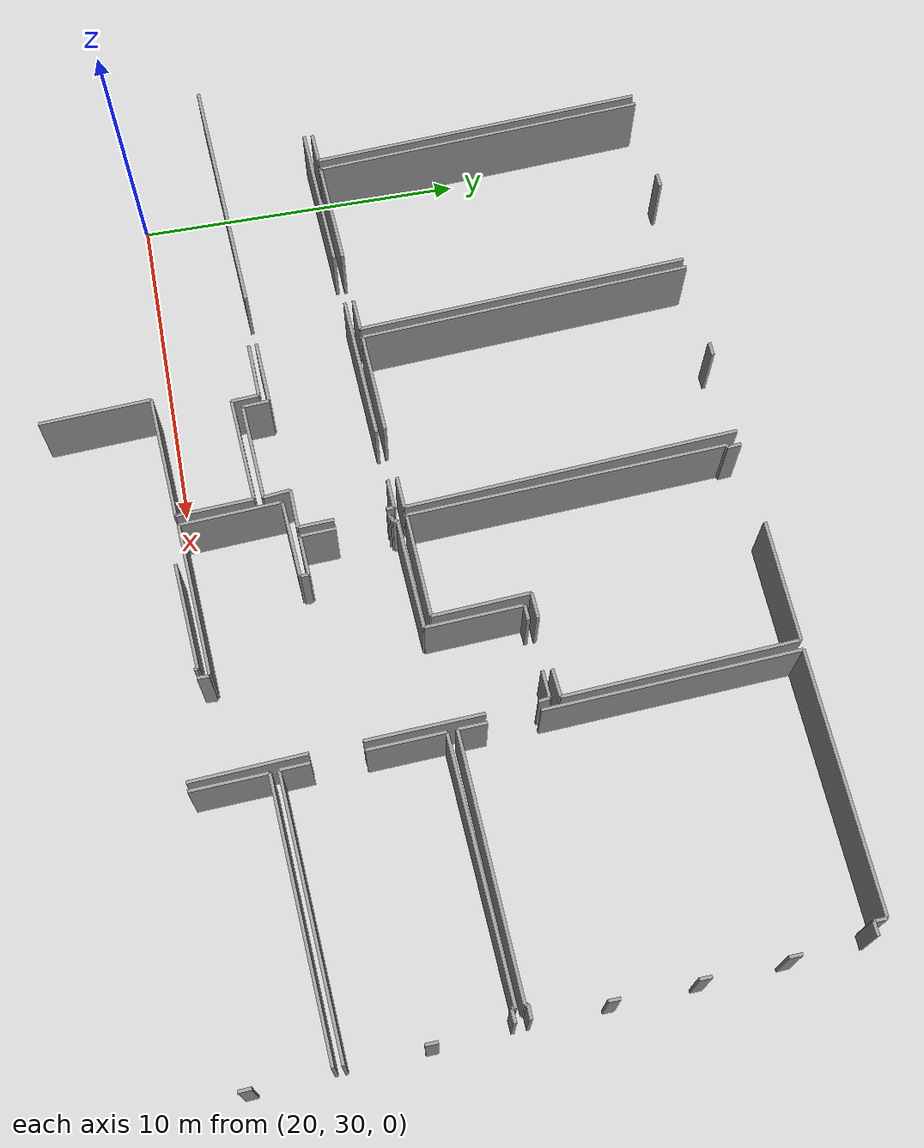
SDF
<sdf version="1.6">
 <world name="default">
  <model name="ground_plane">
   <static>1</static>
   <link name="link">
    <collision name="collision">
     <geometry><plane><normal>0 0 1</normal><size>100 100</size></plane></geometry>
     <surface><friction><ode><mu>100</mu><mu2>50</mu2></ode></friction></surface>
    </collision>
    <visual name="visual">
     <cast_shadows>0</cast_shadows>
     <geometry><plane><normal>0 0 1</normal><size>100 100</size></plane></geometry>
     <material>
      <script><uri>file://media/materials/scripts/gazebo.material</uri><name>Gazebo/Grey</name></script>
     </material>
    </visual>
   </link>
  </model>
  <model name="50025633">
   <static>1</static>
   <link name="Wall_14">
    <collision name="Wall_14_Collision">
     <geometry><box><size>0.938079922065 0.1 2.5</size></box></geometry>
     <pose>0.469039961033 0 1.25 0 0 0</pose>
    </collision>
    <visual name="Wall_14_Visual">
     <pose>0.469039961033 0 1.25 0 0 0</pose>
     <geometry><box><size>0.938079922065 0.1 2.5</size></box></geometry>
     <material>
      <script><uri>file://media/materials/scripts/gazebo.material</uri><name>Gazebo/Grey</name></script>
      <ambient>1 1 1 1</ambient>
     </material>
    </visual>
    <pose>70.1288818594 -11.8567118293 0 0 0 -3.07545689106</pose>
   </link>
   <link name="Wall_21">
    <collision name="Wall_21_Collision">
     <geometry><box><size>10.2370171481 0.1 2.5</size></box></geometry>
     <pose>5.11850857406 0 1.25 0 0 0</pose>
    </collision>
    <visual name="Wall_21_Visual">
     <pose>5.11850857406 0 1.25 0 0 0</pose>
     <geometry><box><size>10.2370171481 0.1 2.5</size></box></geometry>
     <material>
      <script><uri>file://media/materials/scripts/gazebo.material</uri><name>Gazebo/Grey</name></script>
      <ambient>1 1 1 1</ambient>
     </material>
    </visual>
    <pose>69.5203613011 -1.63779687609 0 0 0 -1.51131811286</pose>
   </link>
   <link name="Wall_22">
    <collision name="Wall_22_Collision">
     <geometry><box><size>0.977506399178 0.1 2.5</size></box></geometry>
     <pose>0.488753199589 0 1.25 0 0 0</pose>
    </collision>
    <visual name="Wall_22_Visual">
     <pose>0.488753199589 0 1.25 0 0 0</pose>
     <geometry><box><size>0.977506399178 0.1 2.5</size></box></geometry>
     <material>
      <script><uri>file://media/materials/scripts/gazebo.material</uri><name>Gazebo/Grey</name></script>
      <ambient>1 1 1 1</ambient>
     </material>
    </visual>
    <pose>76.1431992428 -11.4862638235 0 0 0 -3.080211524</pose>
   </link>
   <link name="Wall_23">
    <collision name="Wall_23_Collision">
     <geometry><box><size>3.18343379874 0.1 2.5</size></box></geometry>
     <pose>1.59171689937 0 1.25 0 0 0</pose>
    </collision>
    <visual name="Wall_23_Visual">
     <pose>1.59171689937 0 1.25 0 0 0</pose>
     <geometry><box><size>3.18343379874 0.1 2.5</size></box></geometry>
     <material>
      <script><uri>file://media/materials/scripts/gazebo.material</uri><name>Gazebo/Grey</name></script>
      <ambient>1 1 1 1</ambient>
     </material>
    </visual>
    <pose>73.6069770249 -11.6361707669 0 0 0 -3.07805863666</pose>
   </link>
   <link name="Wall_24">
    <collision name="Wall_24_Collision">
     <geometry><box><size>10.2492937083 0.1 2.5</size></box></geometry>
     <pose>5.12464685417 0 1.25 0 0 0</pose>
    </collision>
    <visual name="Wall_24_Visual">
     <pose>5.12464685417 0 1.25 0 0 0</pose>
     <geometry><box><size>10.2492937083 0.1 2.5</size></box></geometry>
     <material>
      <script><uri>file://media/materials/scripts/gazebo.material</uri><name>Gazebo/Grey</name></script>
      <ambient>1 1 1 1</ambient>
     </material>
    </visual>
    <pose>70.4299661439 -11.8382910608 0 0 0 1.63138285958</pose>
   </link>
   <link name="Wall_25">
    <collision name="Wall_25_Collision">
     <geometry><box><size>0.422264637513 0.1 2.5</size></box></geometry>
     <pose>0.211132318757 0 1.25 0 0 0</pose>
    </collision>
    <visual name="Wall_25_Visual">
     <pose>0.211132318757 0 1.25 0 0 0</pose>
     <geometry><box><size>0.422264637513 0.1 2.5</size></box></geometry>
     <material>
      <script><uri>file://media/materials/scripts/gazebo.material</uri><name>Gazebo/Grey</name></script>
      <ambient>1 1 1 1</ambient>
     </material>
    </visual>
    <pose>72.4387191849 -1.45526611658 0 0 0 0.0688595942033</pose>
   </link>
   <link name="Wall_26">
    <collision name="Wall_26_Collision">
     <geometry><box><size>10.2412191776 0.1 2.5</size></box></geometry>
     <pose>5.12060958881 0 1.25 0 0 0</pose>
    </collision>
    <visual name="Wall_26_Visual">
     <pose>5.12060958881 0 1.25 0 0 0</pose>
     <geometry><box><size>10.2412191776 0.1 2.5</size></box></geometry>
     <material>
      <script><uri>file://media/materials/scripts/gazebo.material</uri><name>Gazebo/Grey</name></script>
      <ambient>1 1 1 1</ambient>
     </material>
    </visual>
    <pose>75.501775381 -1.26515108206 0 0 0 -1.50812371461</pose>
   </link>
   <link name="Wall_27">
    <collision name="Wall_27_Collision">
     <geometry><box><size>0.972380827445 0.1 2.5</size></box></geometry>
     <pose>0.486190413722 0 1.25 0 0 0</pose>
    </collision>
    <visual name="Wall_27_Visual">
     <pose>0.486190413722 0 1.25 0 0 0</pose>
     <geometry><box><size>0.972380827445 0.1 2.5</size></box></geometry>
     <material>
      <script><uri>file://media/materials/scripts/gazebo.material</uri><name>Gazebo/Grey</name></script>
      <ambient>1 1 1 1</ambient>
     </material>
    </visual>
    <pose>82.1318545903 -11.1329661884 0 0 0 -3.08525348964</pose>
   </link>
   <link name="Wall_28">
    <collision name="Wall_28_Collision">
     <geometry><box><size>3.14222034256 0.1 2.5</size></box></geometry>
     <pose>1.57111017128 0 1.25 0 0 0</pose>
    </collision>
    <visual name="Wall_28_Visual">
     <pose>1.57111017128 0 1.25 0 0 0</pose>
     <geometry><box><size>3.14222034256 0.1 2.5</size></box></geometry>
     <material>
      <script><uri>file://media/materials/scripts/gazebo.material</uri><name>Gazebo/Grey</name></script>
      <ambient>1 1 1 1</ambient>
     </material>
    </visual>
    <pose>79.5598071536 -11.2828731317 0 0 0 -3.08532491945</pose>
   </link>
   <link name="Wall_29">
    <collision name="Wall_29_Collision">
     <geometry><box><size>10.2571789274 0.1 2.5</size></box></geometry>
     <pose>5.1285894637 0 1.25 0 0 0</pose>
    </collision>
    <visual name="Wall_29_Visual">
     <pose>5.1285894637 0 1.25 0 0 0</pose>
     <geometry><box><size>10.2571789274 0.1 2.5</size></box></geometry>
     <material>
      <script><uri>file://media/materials/scripts/gazebo.material</uri><name>Gazebo/Grey</name></script>
      <ambient>1 1 1 1</ambient>
     </material>
    </visual>
    <pose>76.4225597246 -11.4595854692 0 0 0 1.63334647593</pose>
   </link>
   <link name="Wall_30">
    <collision name="Wall_30_Collision">
     <geometry><box><size>0.410088114194 0.1 2.5</size></box></geometry>
     <pose>0.205044057097 0 1.25 0 0 0</pose>
    </collision>
    <visual name="Wall_30_Visual">
     <pose>0.205044057097 0 1.25 0 0 0</pose>
     <geometry><box><size>0.410088114194 0.1 2.5</size></box></geometry>
     <material>
      <script><uri>file://media/materials/scripts/gazebo.material</uri><name>Gazebo/Grey</name></script>
      <ambient>1 1 1 1</ambient>
     </material>
    </visual>
    <pose>78.4376647547 -1.08046064625 0 0 0 0.0611279695019</pose>
   </link>
   <link name="Wall_31">
    <collision name="Wall_31_Collision">
     <geometry><box><size>10.2647523739 0.1 2.5</size></box></geometry>
     <pose>5.13237618697 0 1.25 0 0 0</pose>
    </collision>
    <visual name="Wall_31_Visual">
     <pose>5.13237618697 0 1.25 0 0 0</pose>
     <geometry><box><size>10.2647523739 0.1 2.5</size></box></geometry>
     <material>
      <script><uri>file://media/materials/scripts/gazebo.material</uri><name>Gazebo/Grey</name></script>
      <ambient>1 1 1 1</ambient>
     </material>
    </visual>
    <pose>81.4262756382 -0.892492584053 0 0 0 -1.50200404181</pose>
   </link>
   <link name="Wall_32">
    <collision name="Wall_32_Collision">
     <geometry><box><size>3.23218013585 0.1 2.5</size></box></geometry>
     <pose>1.61609006792 0 1.25 0 0 0</pose>
    </collision>
    <visual name="Wall_32_Visual">
     <pose>1.61609006792 0 1.25 0 0 0</pose>
     <geometry><box><size>3.23218013585 0.1 2.5</size></box></geometry>
     <material>
      <script><uri>file://media/materials/scripts/gazebo.material</uri><name>Gazebo/Grey</name></script>
      <ambient>1 1 1 1</ambient>
     </material>
    </visual>
    <pose>85.6129987105 -10.9204286322 0 0 0 -3.08602656118</pose>
   </link>
   <link name="Wall_33">
    <collision name="Wall_33_Collision">
     <geometry><box><size>9.83225560325 0.1 2.5</size></box></geometry>
     <pose>4.91612780163 0 1.25 0 0 0</pose>
    </collision>
    <visual name="Wall_33_Visual">
     <pose>4.91612780163 0 1.25 0 0 0</pose>
     <geometry><box><size>9.83225560325 0.1 2.5</size></box></geometry>
     <material>
      <script><uri>file://media/materials/scripts/gazebo.material</uri><name>Gazebo/Grey</name></script>
      <ambient>1 1 1 1</ambient>
     </material>
    </visual>
    <pose>82.3858071155 -11.0999358449 0 0 0 1.62858408503</pose>
   </link>
   <link name="Wall_34">
    <collision name="Wall_34_Collision">
     <geometry><box><size>0.0886448327981 0.1 2.5</size></box></geometry>
     <pose>0.044322416399 0 1.25 0 0 0</pose>
    </collision>
    <visual name="Wall_34_Visual">
     <pose>0.044322416399 0 1.25 0 0 0</pose>
     <geometry><box><size>0.0886448327981 0.1 2.5</size></box></geometry>
     <material>
      <script><uri>file://media/materials/scripts/gazebo.material</uri><name>Gazebo/Grey</name></script>
      <ambient>1 1 1 1</ambient>
     </material>
    </visual>
    <pose>81.8179392877 -1.28409271363 0 0 0 -0.0712870434941</pose>
   </link>
   <link name="Wall_35">
    <collision name="Wall_35_Collision">
     <geometry><box><size>0.431172528495 0.1 2.5</size></box></geometry>
     <pose>0.215586264247 0 1.25 0 0 0</pose>
    </collision>
    <visual name="Wall_35_Visual">
     <pose>0.215586264247 0 1.25 0 0 0</pose>
     <geometry><box><size>0.431172528495 0.1 2.5</size></box></geometry>
     <material>
      <script><uri>file://media/materials/scripts/gazebo.material</uri><name>Gazebo/Grey</name></script>
      <ambient>1 1 1 1</ambient>
     </material>
    </visual>
    <pose>81.9063589763 -1.29040659082 0 0 0 1.65900742222</pose>
   </link>
   <link name="Wall_36">
    <collision name="Wall_36_Collision">
     <geometry><box><size>3.73860603192 0.1 2.5</size></box></geometry>
     <pose>1.86930301596 0 1.25 0 0 0</pose>
    </collision>
    <visual name="Wall_36_Visual">
     <pose>1.86930301596 0 1.25 0 0 0</pose>
     <geometry><box><size>3.73860603192 0.1 2.5</size></box></geometry>
     <material>
      <script><uri>file://media/materials/scripts/gazebo.material</uri><name>Gazebo/Grey</name></script>
      <ambient>1 1 1 1</ambient>
     </material>
    </visual>
    <pose>84.4279716193 -0.714471736824 0 0 0 0.0562980799925</pose>
   </link>
   <link name="Wall_37">
    <collision name="Wall_37_Collision">
     <geometry><box><size>7.18325854843 0.1 2.5</size></box></geometry>
     <pose>3.59162927421 0 1.25 0 0 0</pose>
    </collision>
    <visual name="Wall_37_Visual">
     <pose>3.59162927421 0 1.25 0 0 0</pose>
     <geometry><box><size>7.18325854843 0.1 2.5</size></box></geometry>
     <material>
      <script><uri>file://media/materials/scripts/gazebo.material</uri><name>Gazebo/Grey</name></script>
      <ambient>1 1 1 1</ambient>
     </material>
    </visual>
    <pose>88.160654509 -0.50410656097 0 0 0 -1.50329243491</pose>
   </link>
   <link name="Wall_38">
    <collision name="Wall_38_Collision">
     <geometry><box><size>0.864491419705 0.1 2.5</size></box></geometry>
     <pose>0.432245709852 0 1.25 0 0 0</pose>
    </collision>
    <visual name="Wall_38_Visual">
     <pose>0.432245709852 0 1.25 0 0 0</pose>
     <geometry><box><size>0.864491419705 0.1 2.5</size></box></geometry>
     <material>
      <script><uri>file://media/materials/scripts/gazebo.material</uri><name>Gazebo/Grey</name></script>
      <ambient>1 1 1 1</ambient>
     </material>
    </visual>
    <pose>88.6451842394 -7.67100507524 0 0 0 -3.04474612614</pose>
   </link>
   <link name="Wall_39">
    <collision name="Wall_39_Collision">
     <geometry><box><size>0.778459122221 0.1 2.5</size></box></geometry>
     <pose>0.389229561111 0 1.25 0 0 0</pose>
    </collision>
    <visual name="Wall_39_Visual">
     <pose>0.389229561111 0 1.25 0 0 0</pose>
     <geometry><box><size>0.778459122221 0.1 2.5</size></box></geometry>
     <material>
      <script><uri>file://media/materials/scripts/gazebo.material</uri><name>Gazebo/Grey</name></script>
      <ambient>1 1 1 1</ambient>
     </material>
    </visual>
    <pose>86.1893782038 -7.86321626617 0 0 0 -3.07724986853</pose>
   </link>
   <link name="Wall_40">
    <collision name="Wall_40_Collision">
     <geometry><box><size>3.01383329463 0.1 2.5</size></box></geometry>
     <pose>1.50691664731 0 1.25 0 0 0</pose>
    </collision>
    <visual name="Wall_40_Visual">
     <pose>1.50691664731 0 1.25 0 0 0</pose>
     <geometry><box><size>3.01383329463 0.1 2.5</size></box></geometry>
     <material>
      <script><uri>file://media/materials/scripts/gazebo.material</uri><name>Gazebo/Grey</name></script>
      <ambient>1 1 1 1</ambient>
     </material>
    </visual>
    <pose>85.4125299337 -7.91326994048 0 0 0 -1.50423096694</pose>
   </link>
   <link name="Wall_41">
    <collision name="Wall_41_Collision">
     <geometry><box><size>0.353597451561 0.1 2.5</size></box></geometry>
     <pose>0.17679872578 0 1.25 0 0 0</pose>
    </collision>
    <visual name="Wall_41_Visual">
     <pose>0.17679872578 0 1.25 0 0 0</pose>
     <geometry><box><size>0.353597451561 0.1 2.5</size></box></geometry>
     <material>
      <script><uri>file://media/materials/scripts/gazebo.material</uri><name>Gazebo/Grey</name></script>
      <ambient>1 1 1 1</ambient>
     </material>
    </visual>
    <pose>97.3011668604 -8.03497405212 0 0 0 1.60205860414</pose>
   </link>
   <link name="Wall_42">
    <collision name="Wall_42_Collision">
     <geometry><box><size>0.368060231428 0.1 2.5</size></box></geometry>
     <pose>0.184030115714 0 1.25 0 0 0</pose>
    </collision>
    <visual name="Wall_42_Visual">
     <pose>0.184030115714 0 1.25 0 0 0</pose>
     <geometry><box><size>0.368060231428 0.1 2.5</size></box></geometry>
     <material>
      <script><uri>file://media/materials/scripts/gazebo.material</uri><name>Gazebo/Grey</name></script>
      <ambient>1 1 1 1</ambient>
     </material>
    </visual>
    <pose>97.1557063094 -5.46648372938 0 0 0 1.60980933714</pose>
   </link>
   <link name="Wall_43">
    <collision name="Wall_43_Collision">
     <geometry><box><size>0.397083035809 0.1 2.5</size></box></geometry>
     <pose>0.198541517904 0 1.25 0 0 0</pose>
    </collision>
    <visual name="Wall_43_Visual">
     <pose>0.198541517904 0 1.25 0 0 0</pose>
     <geometry><box><size>0.397083035809 0.1 2.5</size></box></geometry>
     <material>
      <script><uri>file://media/materials/scripts/gazebo.material</uri><name>Gazebo/Grey</name></script>
      <ambient>1 1 1 1</ambient>
     </material>
    </visual>
    <pose>96.9933494674 -2.91616009553 0 0 0 1.63097996848</pose>
   </link>
   <link name="Wall_44">
    <collision name="Wall_44_Collision">
     <geometry><box><size>0.418354468596 0.1 2.5</size></box></geometry>
     <pose>0.209177234298 0 1.25 0 0 0</pose>
    </collision>
    <visual name="Wall_44_Visual">
     <pose>0.209177234298 0 1.25 0 0 0</pose>
     <geometry><box><size>0.418354468596 0.1 2.5</size></box></geometry>
     <material>
      <script><uri>file://media/materials/scripts/gazebo.material</uri><name>Gazebo/Grey</name></script>
      <ambient>1 1 1 1</ambient>
     </material>
    </visual>
    <pose>96.8469996379 -0.362495315408 0 0 0 -3.0759233687</pose>
   </link>
   <link name="Wall_45">
    <collision name="Wall_45_Collision">
     <geometry><box><size>0.39029818244 0.1 2.5</size></box></geometry>
     <pose>0.19514909122 0 1.25 0 0 0</pose>
    </collision>
    <visual name="Wall_45_Visual">
     <pose>0.19514909122 0 1.25 0 0 0</pose>
     <geometry><box><size>0.39029818244 0.1 2.5</size></box></geometry>
     <material>
      <script><uri>file://media/materials/scripts/gazebo.material</uri><name>Gazebo/Grey</name></script>
      <ambient>1 1 1 1</ambient>
     </material>
    </visual>
    <pose>96.4295469126 -0.389948612408 0 0 0 1.61312320617</pose>
   </link>
   <link name="Wall_46">
    <collision name="Wall_46_Collision">
     <geometry><box><size>7.97525997111 0.1 2.5</size></box></geometry>
     <pose>3.98762998556 0 1.25 0 0 0</pose>
    </collision>
    <visual name="Wall_46_Visual">
     <pose>3.98762998556 0 1.25 0 0 0</pose>
     <geometry><box><size>7.97525997111 0.1 2.5</size></box></geometry>
     <material>
      <script><uri>file://media/materials/scripts/gazebo.material</uri><name>Gazebo/Grey</name></script>
      <ambient>1 1 1 1</ambient>
     </material>
    </visual>
    <pose>96.4130317409 -0.0 0 0 0 -3.07932646644</pose>
   </link>
   <link name="Wall_47">
    <collision name="Wall_47_Collision">
     <geometry><box><size>7.81610969272 0.1 2.5</size></box></geometry>
     <pose>3.90805484636 0 1.25 0 0 0</pose>
    </collision>
    <visual name="Wall_47_Visual">
     <pose>3.90805484636 0 1.25 0 0 0</pose>
     <geometry><box><size>7.81610969272 0.1 2.5</size></box></geometry>
     <material>
      <script><uri>file://media/materials/scripts/gazebo.material</uri><name>Gazebo/Grey</name></script>
      <ambient>1 1 1 1</ambient>
     </material>
    </visual>
    <pose>88.4532271281 -0.496268206389 0 0 0 -1.50922136141</pose>
   </link>
   <link name="Wall_48">
    <collision name="Wall_48_Collision">
     <geometry><box><size>0.879940785302 0.1 2.5</size></box></geometry>
     <pose>0.439970392651 0 1.25 0 0 0</pose>
    </collision>
    <visual name="Wall_48_Visual">
     <pose>0.439970392651 0 1.25 0 0 0</pose>
     <geometry><box><size>0.879940785302 0.1 2.5</size></box></geometry>
     <material>
      <script><uri>file://media/materials/scripts/gazebo.material</uri><name>Gazebo/Grey</name></script>
      <ambient>1 1 1 1</ambient>
     </material>
    </visual>
    <pose>89.0359586104 -9.87374786414 0 0 0 -1.52125609071</pose>
   </link>
   <link name="Wall_49">
    <collision name="Wall_49_Collision">
     <geometry><box><size>7.94210908684 0.1 2.5</size></box></geometry>
     <pose>3.97105454342 0 1.25 0 0 0</pose>
    </collision>
    <visual name="Wall_49_Visual">
     <pose>3.97105454342 0 1.25 0 0 0</pose>
     <geometry><box><size>7.94210908684 0.1 2.5</size></box></geometry>
     <material>
      <script><uri>file://media/materials/scripts/gazebo.material</uri><name>Gazebo/Grey</name></script>
      <ambient>1 1 1 1</ambient>
     </material>
    </visual>
    <pose>89.0795332558 -10.7526090795 0 0 0 0.0581612449971</pose>
   </link>
   <link name="Wall_50">
    <collision name="Wall_50_Collision">
     <geometry><box><size>0.0887652697066 0.1 2.5</size></box></geometry>
     <pose>0.0443826348533 0 1.25 0 0 0</pose>
    </collision>
    <visual name="Wall_50_Visual">
     <pose>0.0443826348533 0 1.25 0 0 0</pose>
     <geometry><box><size>0.0887652697066 0.1 2.5</size></box></geometry>
     <material>
      <script><uri>file://media/materials/scripts/gazebo.material</uri><name>Gazebo/Grey</name></script>
      <ambient>1 1 1 1</ambient>
     </material>
    </visual>
    <pose>97.0082131219 -10.2909465099 0 0 0 1.50061050934</pose>
   </link>
   <link name="Wall_51">
    <collision name="Wall_51_Collision">
     <geometry><box><size>0.419566398624 0.1 2.5</size></box></geometry>
     <pose>0.209783199312 0 1.25 0 0 0</pose>
    </collision>
    <visual name="Wall_51_Visual">
     <pose>0.209783199312 0 1.25 0 0 0</pose>
     <geometry><box><size>0.419566398624 0.1 2.5</size></box></geometry>
     <material>
      <script><uri>file://media/materials/scripts/gazebo.material</uri><name>Gazebo/Grey</name></script>
      <ambient>1 1 1 1</ambient>
     </material>
    </visual>
    <pose>97.0144380713 -10.2023997815 0 0 0 0.0314951863792</pose>
   </link>
   <link name="Wall_71">
    <collision name="Wall_71_Collision">
     <geometry><box><size>4.41754171635 0.1 2.5</size></box></geometry>
     <pose>2.20877085818 0 1.25 0 0 0</pose>
    </collision>
    <visual name="Wall_71_Visual">
     <pose>2.20877085818 0 1.25 0 0 0</pose>
     <geometry><box><size>4.41754171635 0.1 2.5</size></box></geometry>
     <material>
      <script><uri>file://media/materials/scripts/gazebo.material</uri><name>Gazebo/Grey</name></script>
      <ambient>1 1 1 1</ambient>
     </material>
    </visual>
    <pose>69.1919634634 -12.1762168823 0 0 0 0.0625031221877</pose>
   </link>
   <link name="Wall_72">
    <collision name="Wall_72_Collision">
     <geometry><box><size>4.42643292955 0.1 2.5</size></box></geometry>
     <pose>2.21321646477 0 1.25 0 0 0</pose>
    </collision>
    <visual name="Wall_72_Visual">
     <pose>2.21321646477 0 1.25 0 0 0</pose>
     <geometry><box><size>4.42643292955 0.1 2.5</size></box></geometry>
     <material>
      <script><uri>file://media/materials/scripts/gazebo.material</uri><name>Gazebo/Grey</name></script>
      <ambient>1 1 1 1</ambient>
     </material>
    </visual>
    <pose>75.196244704 -11.8150427806 0 0 0 0.0586395344359</pose>
   </link>
   <link name="Wall_73">
    <collision name="Wall_73_Collision">
     <geometry><box><size>0.89583274343 0.1 2.5</size></box></geometry>
     <pose>0.447916371715 0 1.25 0 0 0</pose>
    </collision>
    <visual name="Wall_73_Visual">
     <pose>0.447916371715 0 1.25 0 0 0</pose>
     <geometry><box><size>0.89583274343 0.1 2.5</size></box></geometry>
     <material>
      <script><uri>file://media/materials/scripts/gazebo.material</uri><name>Gazebo/Grey</name></script>
      <ambient>1 1 1 1</ambient>
     </material>
    </visual>
    <pose>81.1948091545 -11.4706379303 0 0 0 0.049370610395</pose>
   </link>
   <link name="Wall_74">
    <collision name="Wall_74_Collision">
     <geometry><box><size>0.232237791553 0.1 2.5</size></box></geometry>
     <pose>0.116118895777 0 1.25 0 0 0</pose>
    </collision>
    <visual name="Wall_74_Visual">
     <pose>0.116118895777 0 1.25 0 0 0</pose>
     <geometry><box><size>0.232237791553 0.1 2.5</size></box></geometry>
     <material>
      <script><uri>file://media/materials/scripts/gazebo.material</uri><name>Gazebo/Grey</name></script>
      <ambient>1 1 1 1</ambient>
     </material>
    </visual>
    <pose>82.0895503427 -11.426428086 0 0 0 -1.52318720421</pose>
   </link>
   <link name="Wall_75">
    <collision name="Wall_75_Collision">
     <geometry><box><size>1.08695917952 0.1 2.5</size></box></geometry>
     <pose>0.543479589758 0 1.25 0 0 0</pose>
    </collision>
    <visual name="Wall_75_Visual">
     <pose>0.543479589758 0 1.25 0 0 0</pose>
     <geometry><box><size>1.08695917952 0.1 2.5</size></box></geometry>
     <material>
      <script><uri>file://media/materials/scripts/gazebo.material</uri><name>Gazebo/Grey</name></script>
      <ambient>1 1 1 1</ambient>
     </material>
    </visual>
    <pose>82.1702206046 -13.2367449867 0 0 0 -1.51770954878</pose>
   </link>
   <link name="Wall_76">
    <collision name="Wall_76_Collision">
     <geometry><box><size>1.21126029167 0.1 2.5</size></box></geometry>
     <pose>0.605630145837 0 1.25 0 0 0</pose>
    </collision>
    <visual name="Wall_76_Visual">
     <pose>0.605630145837 0 1.25 0 0 0</pose>
     <geometry><box><size>1.21126029167 0.1 2.5</size></box></geometry>
     <material>
      <script><uri>file://media/materials/scripts/gazebo.material</uri><name>Gazebo/Grey</name></script>
      <ambient>1 1 1 1</ambient>
     </material>
    </visual>
    <pose>82.2278966658 -14.3221728884 0 0 0 -3.10193674588</pose>
   </link>
   <link name="Wall_77">
    <collision name="Wall_77_Collision">
     <geometry><box><size>0.831703609184 0.1 2.5</size></box></geometry>
     <pose>0.415851804592 0 1.25 0 0 0</pose>
    </collision>
    <visual name="Wall_77_Visual">
     <pose>0.415851804592 0 1.25 0 0 0</pose>
     <geometry><box><size>0.831703609184 0.1 2.5</size></box></geometry>
     <material>
      <script><uri>file://media/materials/scripts/gazebo.material</uri><name>Gazebo/Grey</name></script>
      <ambient>1 1 1 1</ambient>
     </material>
    </visual>
    <pose>81.0175886579 -14.3701939262 0 0 0 -1.45506180836</pose>
   </link>
   <link name="Wall_78">
    <collision name="Wall_78_Collision">
     <geometry><box><size>3.02241551227 0.1 2.5</size></box></geometry>
     <pose>1.51120775613 0 1.25 0 0 0</pose>
    </collision>
    <visual name="Wall_78_Visual">
     <pose>1.51120775613 0 1.25 0 0 0</pose>
     <geometry><box><size>3.02241551227 0.1 2.5</size></box></geometry>
     <material>
      <script><uri>file://media/materials/scripts/gazebo.material</uri><name>Gazebo/Grey</name></script>
      <ambient>1 1 1 1</ambient>
     </material>
    </visual>
    <pose>81.1136307335 -15.1963336319 0 0 0 -3.0779966024</pose>
   </link>
   <link name="Wall_79">
    <collision name="Wall_79_Collision">
     <geometry><box><size>0.808257457894 0.1 2.5</size></box></geometry>
     <pose>0.404128728947 0 1.25 0 0 0</pose>
    </collision>
    <visual name="Wall_79_Visual">
     <pose>0.404128728947 0 1.25 0 0 0</pose>
     <geometry><box><size>0.808257457894 0.1 2.5</size></box></geometry>
     <material>
      <script><uri>file://media/materials/scripts/gazebo.material</uri><name>Gazebo/Grey</name></script>
      <ambient>1 1 1 1</ambient>
     </material>
    </visual>
    <pose>78.0973251774 -15.388417783 0 0 0 1.63024438254</pose>
   </link>
   <link name="Wall_80">
    <collision name="Wall_80_Collision">
     <geometry><box><size>1.94382377282 0.1 2.5</size></box></geometry>
     <pose>0.971911886409 0 1.25 0 0 0</pose>
    </collision>
    <visual name="Wall_80_Visual">
     <pose>0.971911886409 0 1.25 0 0 0</pose>
     <geometry><box><size>1.94382377282 0.1 2.5</size></box></geometry>
     <material>
      <script><uri>file://media/materials/scripts/gazebo.material</uri><name>Gazebo/Grey</name></script>
      <ambient>1 1 1 1</ambient>
     </material>
    </visual>
    <pose>78.0493041396 -14.5815881243 0 0 0 -3.0822803479</pose>
   </link>
   <link name="Wall_81">
    <collision name="Wall_81_Collision">
     <geometry><box><size>7.47284457346 0.1 2.5</size></box></geometry>
     <pose>3.73642228673 0 1.25 0 0 0</pose>
    </collision>
    <visual name="Wall_81_Visual">
     <pose>3.73642228673 0 1.25 0 0 0</pose>
     <geometry><box><size>7.47284457346 0.1 2.5</size></box></geometry>
     <material>
      <script><uri>file://media/materials/scripts/gazebo.material</uri><name>Gazebo/Grey</name></script>
      <ambient>1 1 1 1</ambient>
     </material>
    </visual>
    <pose>74.5318266415 -14.7913308052 0 0 0 -3.07694691196</pose>
   </link>
   <link name="Wall_175">
    <collision name="Wall_175_Collision">
     <geometry><box><size>1.68246525329 0.1 2.5</size></box></geometry>
     <pose>0.841232626644 0 1.25 0 0 0</pose>
    </collision>
    <visual name="Wall_175_Visual">
     <pose>0.841232626644 0 1.25 0 0 0</pose>
     <geometry><box><size>1.68246525329 0.1 2.5</size></box></geometry>
     <material>
      <script><uri>file://media/materials/scripts/gazebo.material</uri><name>Gazebo/Grey</name></script>
      <ambient>1 1 1 1</ambient>
     </material>
    </visual>
    <pose>76.1280815087 -14.9273904123 0 0 0 0.0400299916154</pose>
   </link>
   <link name="Wall_176">
    <collision name="Wall_176_Collision">
     <geometry><box><size>0.837773668181 0.1 2.5</size></box></geometry>
     <pose>0.41888683409 0 1.25 0 0 0</pose>
    </collision>
    <visual name="Wall_176_Visual">
     <pose>0.41888683409 0 1.25 0 0 0</pose>
     <geometry><box><size>0.837773668181 0.1 2.5</size></box></geometry>
     <material>
      <script><uri>file://media/materials/scripts/gazebo.material</uri><name>Gazebo/Grey</name></script>
      <ambient>1 1 1 1</ambient>
     </material>
    </visual>
    <pose>77.8091989507 -14.8600593276 0 0 0 -1.50204938537</pose>
   </link>
   <link name="Wall_177">
    <collision name="Wall_177_Collision">
     <geometry><box><size>3.25439000064 0.1 2.5</size></box></geometry>
     <pose>1.62719500032 0 1.25 0 0 0</pose>
    </collision>
    <visual name="Wall_177_Visual">
     <pose>1.62719500032 0 1.25 0 0 0</pose>
     <geometry><box><size>3.25439000064 0.1 2.5</size></box></geometry>
     <material>
      <script><uri>file://media/materials/scripts/gazebo.material</uri><name>Gazebo/Grey</name></script>
      <ambient>1 1 1 1</ambient>
     </material>
    </visual>
    <pose>77.8667479721 -15.6958540567 0 0 0 0.0679366066609</pose>
   </link>
   <link name="Wall_178">
    <collision name="Wall_178_Collision">
     <geometry><box><size>2.35724700438 0.1 2.5</size></box></geometry>
     <pose>1.17862350219 0 1.25 0 0 0</pose>
    </collision>
    <visual name="Wall_178_Visual">
     <pose>1.17862350219 0 1.25 0 0 0</pose>
     <geometry><box><size>2.35724700438 0.1 2.5</size></box></geometry>
     <material>
      <script><uri>file://media/materials/scripts/gazebo.material</uri><name>Gazebo/Grey</name></script>
      <ambient>1 1 1 1</ambient>
     </material>
    </visual>
    <pose>81.1136307335 -15.4749318749 0 0 0 -1.51374629039</pose>
   </link>
   <link name="Wall_179">
    <collision name="Wall_179_Collision">
     <geometry><box><size>3.84891404258 0.1 2.5</size></box></geometry>
     <pose>1.92445702129 0 1.25 0 0 0</pose>
    </collision>
    <visual name="Wall_179_Visual">
     <pose>1.92445702129 0 1.25 0 0 0</pose>
     <geometry><box><size>3.84891404258 0.1 2.5</size></box></geometry>
     <material>
      <script><uri>file://media/materials/scripts/gazebo.material</uri><name>Gazebo/Grey</name></script>
      <ambient>1 1 1 1</ambient>
     </material>
    </visual>
    <pose>81.2480388234 -17.8283438459 0 0 0 -3.07764819911</pose>
   </link>
   <link name="Wall_180">
    <collision name="Wall_180_Collision">
     <geometry><box><size>3.45530545003 0.1 2.5</size></box></geometry>
     <pose>1.72765272502 0 1.25 0 0 0</pose>
    </collision>
    <visual name="Wall_180_Visual">
     <pose>1.72765272502 0 1.25 0 0 0</pose>
     <geometry><box><size>3.45530545003 0.1 2.5</size></box></geometry>
     <material>
      <script><uri>file://media/materials/scripts/gazebo.material</uri><name>Gazebo/Grey</name></script>
      <ambient>1 1 1 1</ambient>
     </material>
    </visual>
    <pose>77.4069909992 -18.0742928648 0 0 0 -1.51038886203</pose>
   </link>
   <link name="Wall_195">
    <collision name="Wall_195_Collision">
     <geometry><box><size>0.362955348817 0.1 2.5</size></box></geometry>
     <pose>0.181477674408 0 1.25 0 0 0</pose>
    </collision>
    <visual name="Wall_195_Visual">
     <pose>0.181477674408 0 1.25 0 0 0</pose>
     <geometry><box><size>0.362955348817 0.1 2.5</size></box></geometry>
     <material>
      <script><uri>file://media/materials/scripts/gazebo.material</uri><name>Gazebo/Grey</name></script>
      <ambient>1 1 1 1</ambient>
     </material>
    </visual>
    <pose>86.3009191328 -17.8668369 0 0 0 1.56694615331</pose>
   </link>
   <link name="Wall_196">
    <collision name="Wall_196_Collision">
     <geometry><box><size>0.241818415672 0.1 2.5</size></box></geometry>
     <pose>0.120909207836 0 1.25 0 0 0</pose>
    </collision>
    <visual name="Wall_196_Visual">
     <pose>0.120909207836 0 1.25 0 0 0</pose>
     <geometry><box><size>0.241818415672 0.1 2.5</size></box></geometry>
     <material>
      <script><uri>file://media/materials/scripts/gazebo.material</uri><name>Gazebo/Grey</name></script>
      <ambient>1 1 1 1</ambient>
     </material>
    </visual>
    <pose>83.7423379131 -14.4722068716 0 0 0 1.59338838355</pose>
   </link>
   <link name="Wall_197">
    <collision name="Wall_197_Collision">
     <geometry><box><size>1.2326596973 0.1 2.5</size></box></geometry>
     <pose>0.616329848652 0 1.25 0 0 0</pose>
    </collision>
    <visual name="Wall_197_Visual">
     <pose>0.616329848652 0 1.25 0 0 0</pose>
     <geometry><box><size>1.2326596973 0.1 2.5</size></box></geometry>
     <material>
      <script><uri>file://media/materials/scripts/gazebo.material</uri><name>Gazebo/Grey</name></script>
      <ambient>1 1 1 1</ambient>
     </material>
    </visual>
    <pose>83.7368752025 -14.2304501655 0 0 0 -3.07909669798</pose>
   </link>
   <link name="Wall_198">
    <collision name="Wall_198_Collision">
     <geometry><box><size>1.08884450996 0.1 2.5</size></box></geometry>
     <pose>0.54442225498 0 1.25 0 0 0</pose>
    </collision>
    <visual name="Wall_198_Visual">
     <pose>0.54442225498 0 1.25 0 0 0</pose>
     <geometry><box><size>1.08884450996 0.1 2.5</size></box></geometry>
     <material>
      <script><uri>file://media/materials/scripts/gazebo.material</uri><name>Gazebo/Grey</name></script>
      <ambient>1 1 1 1</ambient>
     </material>
    </visual>
    <pose>82.5066219487 -14.3074362737 0 0 0 1.62122083603</pose>
   </link>
   <link name="Wall_199">
    <collision name="Wall_199_Collision">
     <geometry><box><size>0.0955339164459 0.1 2.5</size></box></geometry>
     <pose>0.047766958223 0 1.25 0 0 0</pose>
    </collision>
    <visual name="Wall_199_Visual">
     <pose>0.047766958223 0 1.25 0 0 0</pose>
     <geometry><box><size>0.0955339164459 0.1 2.5</size></box></geometry>
     <material>
      <script><uri>file://media/materials/scripts/gazebo.material</uri><name>Gazebo/Grey</name></script>
      <ambient>1 1 1 1</ambient>
     </material>
    </visual>
    <pose>82.350490056 -11.6464609893 0 0 0 1.57079632679</pose>
   </link>
   <link name="Wall_200">
    <collision name="Wall_200_Collision">
     <geometry><box><size>0.167662145728 0.1 2.5</size></box></geometry>
     <pose>0.083831072864 0 1.25 0 0 0</pose>
    </collision>
    <visual name="Wall_200_Visual">
     <pose>0.083831072864 0 1.25 0 0 0</pose>
     <geometry><box><size>0.167662145728 0.1 2.5</size></box></geometry>
     <material>
      <script><uri>file://media/materials/scripts/gazebo.material</uri><name>Gazebo/Grey</name></script>
      <ambient>1 1 1 1</ambient>
     </material>
    </visual>
    <pose>82.350490056 -11.5509270728 0 0 0 0.0849660473812</pose>
   </link>
   <link name="Wall_201">
    <collision name="Wall_201_Collision">
     <geometry><box><size>0.138680085339 0.1 2.5</size></box></geometry>
     <pose>0.0693400426695 0 1.25 0 0 0</pose>
    </collision>
    <visual name="Wall_201_Visual">
     <pose>0.0693400426695 0 1.25 0 0 0</pose>
     <geometry><box><size>0.138680085339 0.1 2.5</size></box></geometry>
     <material>
      <script><uri>file://media/materials/scripts/gazebo.material</uri><name>Gazebo/Grey</name></script>
      <ambient>1 1 1 1</ambient>
     </material>
    </visual>
    <pose>82.51754737 -11.5366986172 0 0 0 1.60469717429</pose>
   </link>
   <link name="Wall_202">
    <collision name="Wall_202_Collision">
     <geometry><box><size>3.41194397491 0.1 2.5</size></box></geometry>
     <pose>1.70597198746 0 1.25 0 0 0</pose>
    </collision>
    <visual name="Wall_202_Visual">
     <pose>1.70597198746 0 1.25 0 0 0</pose>
     <geometry><box><size>3.41194397491 0.1 2.5</size></box></geometry>
     <material>
      <script><uri>file://media/materials/scripts/gazebo.material</uri><name>Gazebo/Grey</name></script>
      <ambient>1 1 1 1</ambient>
     </material>
    </visual>
    <pose>82.512846898 -11.3980982145 0 0 0 0.0630041010069</pose>
   </link>
   <link name="Wall_203">
    <collision name="Wall_203_Collision">
     <geometry><box><size>3.00930267038 0.1 2.5</size></box></geometry>
     <pose>1.50465133519 0 1.25 0 0 0</pose>
    </collision>
    <visual name="Wall_203_Visual">
     <pose>1.50465133519 0 1.25 0 0 0</pose>
     <geometry><box><size>3.00930267038 0.1 2.5</size></box></geometry>
     <material>
      <script><uri>file://media/materials/scripts/gazebo.material</uri><name>Gazebo/Grey</name></script>
      <ambient>1 1 1 1</ambient>
     </material>
    </visual>
    <pose>85.9180212283 -11.1832739422 0 0 0 1.62955214951</pose>
   </link>
   <link name="Wall_204">
    <collision name="Wall_204_Collision">
     <geometry><box><size>0.468886627522 0.1 2.5</size></box></geometry>
     <pose>0.234443313761 0 1.25 0 0 0</pose>
    </collision>
    <visual name="Wall_204_Visual">
     <pose>0.234443313761 0 1.25 0 0 0</pose>
     <geometry><box><size>0.468886627522 0.1 2.5</size></box></geometry>
     <material>
      <script><uri>file://media/materials/scripts/gazebo.material</uri><name>Gazebo/Grey</name></script>
      <ambient>1 1 1 1</ambient>
     </material>
    </visual>
    <pose>85.7413088909 -8.17916420527 0 0 0 0.0609991486265</pose>
   </link>
   <link name="Wall_205">
    <collision name="Wall_205_Collision">
     <geometry><box><size>0.848242002147 0.1 2.5</size></box></geometry>
     <pose>0.424121001074 0 1.25 0 0 0</pose>
    </collision>
    <visual name="Wall_205_Visual">
     <pose>0.424121001074 0 1.25 0 0 0</pose>
     <geometry><box><size>0.848242002147 0.1 2.5</size></box></geometry>
     <material>
      <script><uri>file://media/materials/scripts/gazebo.material</uri><name>Gazebo/Grey</name></script>
      <ambient>1 1 1 1</ambient>
     </material>
    </visual>
    <pose>87.7866493893 -8.04234235951 0 0 0 0.0669965487382</pose>
   </link>
   <link name="Wall_206">
    <collision name="Wall_206_Collision">
     <geometry><box><size>0.336229187031 0.1 2.5</size></box></geometry>
     <pose>0.168114593515 0 1.25 0 0 0</pose>
    </collision>
    <visual name="Wall_206_Visual">
     <pose>0.168114593515 0 1.25 0 0 0</pose>
     <geometry><box><size>0.336229187031 0.1 2.5</size></box></geometry>
     <material>
      <script><uri>file://media/materials/scripts/gazebo.material</uri><name>Gazebo/Grey</name></script>
      <ambient>1 1 1 1</ambient>
     </material>
    </visual>
    <pose>88.6329884203 -7.98555557673 0 0 0 -1.47695511417</pose>
   </link>
   <link name="Wall_207">
    <collision name="Wall_207_Collision">
     <geometry><box><size>3.58901423319 0.1 2.5</size></box></geometry>
     <pose>1.79450711659 0 1.25 0 0 0</pose>
    </collision>
    <visual name="Wall_207_Visual">
     <pose>1.79450711659 0 1.25 0 0 0</pose>
     <geometry><box><size>3.58901423319 0.1 2.5</size></box></geometry>
     <material>
      <script><uri>file://media/materials/scripts/gazebo.material</uri><name>Gazebo/Grey</name></script>
      <ambient>1 1 1 1</ambient>
     </material>
    </visual>
    <pose>88.7620608394 -9.87628865979 0 0 0 -1.51491101919</pose>
   </link>
   <link name="Wall_208">
    <collision name="Wall_208_Collision">
     <geometry><box><size>3.55905169415 0.1 2.5</size></box></geometry>
     <pose>1.77952584708 0 1.25 0 0 0</pose>
    </collision>
    <visual name="Wall_208_Visual">
     <pose>1.77952584708 0 1.25 0 0 0</pose>
     <geometry><box><size>3.55905169415 0.1 2.5</size></box></geometry>
     <material>
      <script><uri>file://media/materials/scripts/gazebo.material</uri><name>Gazebo/Grey</name></script>
      <ambient>1 1 1 1</ambient>
     </material>
    </visual>
    <pose>89.0533630606 -15.026862562 0 0 0 -1.50253047659</pose>
   </link>
   <link name="Wall_214">
    <collision name="Wall_214_Collision">
     <geometry><box><size>0.376157652364 0.1 2.5</size></box></geometry>
     <pose>0.188078826182 0 1.25 0 0 0</pose>
    </collision>
    <visual name="Wall_214_Visual">
     <pose>0.188078826182 0 1.25 0 0 0</pose>
     <geometry><box><size>0.376157652364 0.1 2.5</size></box></geometry>
     <material>
      <script><uri>file://media/materials/scripts/gazebo.material</uri><name>Gazebo/Grey</name></script>
      <ambient>1 1 1 1</ambient>
     </material>
    </visual>
    <pose>97.5997103493 -13.1506120142 0 0 0 1.61539148716</pose>
   </link>
   <link name="Wall_215">
    <collision name="Wall_215_Collision">
     <geometry><box><size>0.403066719977 0.1 2.5</size></box></geometry>
     <pose>0.201533359989 0 1.25 0 0 0</pose>
    </collision>
    <visual name="Wall_215_Visual">
     <pose>0.201533359989 0 1.25 0 0 0</pose>
     <geometry><box><size>0.403066719977 0.1 2.5</size></box></geometry>
     <material>
      <script><uri>file://media/materials/scripts/gazebo.material</uri><name>Gazebo/Grey</name></script>
      <ambient>1 1 1 1</ambient>
     </material>
    </visual>
    <pose>97.4576798725 -10.6363676785 0 0 0 -3.07630339555</pose>
   </link>
   <link name="Wall_216">
    <collision name="Wall_216_Collision">
     <geometry><box><size>0.109889411869 0.1 2.5</size></box></geometry>
     <pose>0.0549447059347 0 1.25 0 0 0</pose>
    </collision>
    <visual name="Wall_216_Visual">
     <pose>0.0549447059347 0 1.25 0 0 0</pose>
     <geometry><box><size>0.109889411869 0.1 2.5</size></box></geometry>
     <material>
      <script><uri>file://media/materials/scripts/gazebo.material</uri><name>Gazebo/Grey</name></script>
      <ambient>1 1 1 1</ambient>
     </material>
    </visual>
    <pose>97.055471921 -10.6626649135 0 0 0 1.57079632679</pose>
   </link>
   <link name="Wall_217">
    <collision name="Wall_217_Collision">
     <geometry><box><size>7.96882271285 0.1 2.5</size></box></geometry>
     <pose>3.98441135642 0 1.25 0 0 0</pose>
    </collision>
    <visual name="Wall_217_Visual">
     <pose>3.98441135642 0 1.25 0 0 0</pose>
     <geometry><box><size>7.96882271285 0.1 2.5</size></box></geometry>
     <material>
      <script><uri>file://media/materials/scripts/gazebo.material</uri><name>Gazebo/Grey</name></script>
      <ambient>1 1 1 1</ambient>
     </material>
    </visual>
    <pose>97.055471921 -10.5527755016 0 0 0 -3.07770107596</pose>
   </link>
   <link name="Wall_218">
    <collision name="Wall_218_Collision">
     <geometry><box><size>2.38465761222 0.1 2.5</size></box></geometry>
     <pose>1.19232880611 0 1.25 0 0 0</pose>
    </collision>
    <visual name="Wall_218_Visual">
     <pose>1.19232880611 0 1.25 0 0 0</pose>
     <geometry><box><size>2.38465761222 0.1 2.5</size></box></geometry>
     <material>
      <script><uri>file://media/materials/scripts/gazebo.material</uri><name>Gazebo/Grey</name></script>
      <ambient>1 1 1 1</ambient>
     </material>
    </visual>
    <pose>89.1029085758 -11.0615698306 0 0 0 -1.51621685745</pose>
   </link>
   <link name="Wall_219">
    <collision name="Wall_219_Collision">
     <geometry><box><size>0.911875895541 0.1 2.5</size></box></geometry>
     <pose>0.45593794777 0 1.25 0 0 0</pose>
    </collision>
    <visual name="Wall_219_Visual">
     <pose>0.45593794777 0 1.25 0 0 0</pose>
     <geometry><box><size>0.911875895541 0.1 2.5</size></box></geometry>
     <material>
      <script><uri>file://media/materials/scripts/gazebo.material</uri><name>Gazebo/Grey</name></script>
      <ambient>1 1 1 1</ambient>
     </material>
    </visual>
    <pose>89.3300557069 -15.0217809707 0 0 0 -1.51573831271</pose>
   </link>
   <link name="Wall_220">
    <collision name="Wall_220_Collision">
     <geometry><box><size>8.40167678105 0.1 2.5</size></box></geometry>
     <pose>4.20083839053 0 1.25 0 0 0</pose>
    </collision>
    <visual name="Wall_220_Visual">
     <pose>4.20083839053 0 1.25 0 0 0</pose>
     <geometry><box><size>8.40167678105 0.1 2.5</size></box></geometry>
     <material>
      <script><uri>file://media/materials/scripts/gazebo.material</uri><name>Gazebo/Grey</name></script>
      <ambient>1 1 1 1</ambient>
     </material>
    </visual>
    <pose>89.380236421 -15.9322750919 0 0 0 0.0630045418392</pose>
   </link>
   <link name="Wall_221">
    <collision name="Wall_221_Collision">
     <geometry><box><size>0.392780074322 0.1 2.5</size></box></geometry>
     <pose>0.196390037161 0 1.25 0 0 0</pose>
    </collision>
    <visual name="Wall_221_Visual">
     <pose>0.196390037161 0 1.25 0 0 0</pose>
     <geometry><box><size>0.392780074322 0.1 2.5</size></box></geometry>
     <material>
      <script><uri>file://media/materials/scripts/gazebo.material</uri><name>Gazebo/Grey</name></script>
      <ambient>1 1 1 1</ambient>
     </material>
    </visual>
    <pose>97.9483075125 -18.3138898946 0 0 0 1.62645630177</pose>
   </link>
   <link name="Wall_222">
    <collision name="Wall_222_Collision">
     <geometry><box><size>8.3598239837 0.1 2.5</size></box></geometry>
     <pose>4.17991199185 0 1.25 0 0 0</pose>
    </collision>
    <visual name="Wall_222_Visual">
     <pose>4.17991199185 0 1.25 0 0 0</pose>
     <geometry><box><size>8.3598239837 0.1 2.5</size></box></geometry>
     <material>
      <script><uri>file://media/materials/scripts/gazebo.material</uri><name>Gazebo/Grey</name></script>
      <ambient>1 1 1 1</ambient>
     </material>
    </visual>
    <pose>97.7670217429 -15.6964892556 0 0 0 -3.08099766099</pose>
   </link>
   <link name="Wall_223">
    <collision name="Wall_223_Collision">
     <geometry><box><size>2.36899955031 0.1 2.5</size></box></geometry>
     <pose>1.18449977516 0 1.25 0 0 0</pose>
    </collision>
    <visual name="Wall_223_Visual">
     <pose>1.18449977516 0 1.25 0 0 0</pose>
     <geometry><box><size>2.36899955031 0.1 2.5</size></box></geometry>
     <material>
      <script><uri>file://media/materials/scripts/gazebo.material</uri><name>Gazebo/Grey</name></script>
      <ambient>1 1 1 1</ambient>
     </material>
    </visual>
    <pose>89.4225406686 -16.2027427889 0 0 0 -1.51628539916</pose>
   </link>
   <link name="Wall_283">
    <collision name="Wall_283_Collision">
     <geometry><box><size>3.27352901538 0.1 2.5</size></box></geometry>
     <pose>1.63676450769 0 1.25 0 0 0</pose>
    </collision>
    <visual name="Wall_283_Visual">
     <pose>1.63676450769 0 1.25 0 0 0</pose>
     <geometry><box><size>3.27352901538 0.1 2.5</size></box></geometry>
     <material>
      <script><uri>file://media/materials/scripts/gazebo.material</uri><name>Gazebo/Grey</name></script>
      <ambient>1 1 1 1</ambient>
     </material>
    </visual>
    <pose>82.7562551213 -18.0300830205 0 0 0 0.0675388016656</pose>
   </link>
   <link name="Wall_284">
    <collision name="Wall_284_Collision">
     <geometry><box><size>0.107423761387 0.1 2.5</size></box></geometry>
     <pose>0.0537118806935 0 1.25 0 0 0</pose>
    </collision>
    <visual name="Wall_284_Visual">
     <pose>0.0537118806935 0 1.25 0 0 0</pose>
     <geometry><box><size>0.107423761387 0.1 2.5</size></box></geometry>
     <material>
      <script><uri>file://media/materials/scripts/gazebo.material</uri><name>Gazebo/Grey</name></script>
      <ambient>1 1 1 1</ambient>
     </material>
    </visual>
    <pose>86.0223208898 -17.8091608387 0 0 0 -1.39126015299</pose>
   </link>
   <link name="Wall_286">
    <collision name="Wall_286_Collision">
     <geometry><box><size>4.73525809443 0.1 2.5</size></box></geometry>
     <pose>2.36762904722 0 1.25 0 0 0</pose>
    </collision>
    <visual name="Wall_286_Visual">
     <pose>2.36762904722 0 1.25 0 0 0</pose>
     <geometry><box><size>4.73525809443 0.1 2.5</size></box></geometry>
     <material>
      <script><uri>file://media/materials/scripts/gazebo.material</uri><name>Gazebo/Grey</name></script>
      <ambient>1 1 1 1</ambient>
     </material>
    </visual>
    <pose>86.2728433409 -17.4942292179 0 0 0 -3.08081556223</pose>
   </link>
   <link name="Wall_287">
    <collision name="Wall_287_Collision">
     <geometry><box><size>3.1291981985 0.1 2.5</size></box></geometry>
     <pose>1.56459909925 0 1.25 0 0 0</pose>
    </collision>
    <visual name="Wall_287_Visual">
     <pose>1.56459909925 0 1.25 0 0 0</pose>
     <geometry><box><size>3.1291981985 0.1 2.5</size></box></geometry>
     <material>
      <script><uri>file://media/materials/scripts/gazebo.material</uri><name>Gazebo/Grey</name></script>
      <ambient>1 1 1 1</ambient>
     </material>
    </visual>
    <pose>81.5463282327 -17.7818472855 0 0 0 1.63429395878</pose>
   </link>
   <link name="Wall_288">
    <collision name="Wall_288_Collision">
     <geometry><box><size>2.39464415039 0.1 2.5</size></box></geometry>
     <pose>1.19732207519 0 1.25 0 0 0</pose>
    </collision>
    <visual name="Wall_288_Visual">
     <pose>1.19732207519 0 1.25 0 0 0</pose>
     <geometry><box><size>2.39464415039 0.1 2.5</size></box></geometry>
     <material>
      <script><uri>file://media/materials/scripts/gazebo.material</uri><name>Gazebo/Grey</name></script>
      <ambient>1 1 1 1</ambient>
     </material>
    </visual>
    <pose>81.3477650526 -14.6589553519 0 0 0 0.0725321113311</pose>
   </link>
   <pose>-50.4 47.6653699081 0 0 0 0</pose>
  </model>
 </world>
</sdf>
